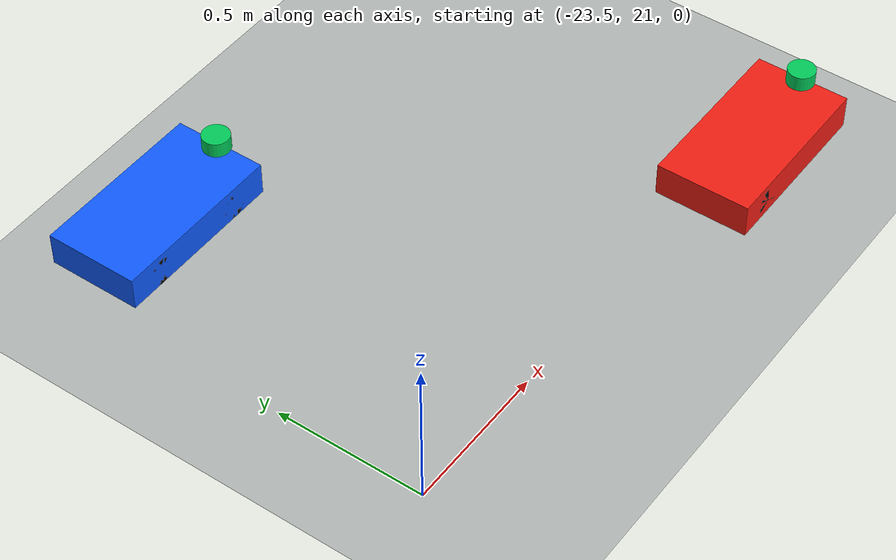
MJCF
<mujoco model="f1tenth_flat_world">
  <compiler angle="radian" coordinate="local"/>
  <option timestep="0.005" gravity="0 0 -9.81"/>
  <visual>
    <headlight ambient="0.55 0.55 0.55" diffuse="0.35 0.35 0.35" specular="0 0 0"/>
    <rgba haze="0.78 0.82 0.88 1"/>
    <global azimuth="135" elevation="-35"/>
  </visual>

  <asset>
    <texture name="melbourne_map" type="2d" file="../maps/Melbourne_map.png"/>
    <material name="melbourne_map" texture="melbourne_map" texrepeat="1 1" reflectance="0" specular="0" shininess="0"/>
    <texture name="grid" type="2d" builtin="checker" width="512" height="512" rgb1="0.62 0.64 0.64" rgb2="0.78 0.80 0.78"/>
    <material name="grid" texture="grid" texrepeat="16 16" reflectance="0" specular="0" shininess="0"/>
    <material name="body_blue" rgba="0.06 0.36 1.0 1"/>
    <material name="body_red" rgba="0.95 0.12 0.08 1"/>
    <material name="wheel_dark" rgba="0.03 0.03 0.035 1"/>
    <material name="lidar_green" rgba="0.0 0.8 0.35 1"/>
  </asset>

  <worldbody>
    <light name="sun" pos="0 0 12" dir="0 0 -1" ambient="0.45 0.45 0.45" diffuse="0.7 0.7 0.7" specular="0 0 0"/>
    <light name="fill" pos="-5 -4 5" dir="1 1 -1" ambient="0.25 0.25 0.25" diffuse="0.3 0.3 0.3" specular="0 0 0"/>
    <geom name="floor" type="plane" size="95 95 0.05" material="grid" friction="1.2 0.02 0.001" pos="8.3332 40.1062 -0.02"/>
    <geom name="melbourne_map" type="plane" size="90.09 90.09 0.01" material="melbourne_map" friction="1.2 0.02 0.001" pos="8.3332 40.1062 -0.005"/>

    <body name="ego_car" pos="-23.1983 22.1783 0.09">
      <freejoint name="ego_root"/>
      <geom name="ego_chassis" type="box" size="0.29 0.155 0.055" pos="0 0 0.055" material="body_blue" mass="3.0"/>
      <geom name="ego_lidar" type="cylinder" size="0.045 0.025" pos="0.275 0 0.135" material="lidar_green" mass="0.05"/>
      <geom name="ego_front_left_wheel" type="cylinder" size="0.045 0.025" pos="0.165 0.13 0.045" euler="1.5708 0 0" material="wheel_dark" mass="0.1"/>
      <geom name="ego_front_right_wheel" type="cylinder" size="0.045 0.025" pos="0.165 -0.13 0.045" euler="1.5708 0 0" material="wheel_dark" mass="0.1"/>
      <geom name="ego_rear_left_wheel" type="cylinder" size="0.045 0.025" pos="-0.165 0.13 0.045" euler="1.5708 0 0" material="wheel_dark" mass="0.1"/>
      <geom name="ego_rear_right_wheel" type="cylinder" size="0.045 0.025" pos="-0.165 -0.13 0.045" euler="1.5708 0 0" material="wheel_dark" mass="0.1"/>
    </body>

    <body name="opp_car" pos="-21.9370 20.9170 0.09">
      <freejoint name="opp_root"/>
      <geom name="opp_chassis" type="box" size="0.29 0.155 0.055" pos="0 0 0.055" material="body_red" mass="3.0"/>
      <geom name="opp_lidar" type="cylinder" size="0.045 0.025" pos="0.275 0 0.135" material="lidar_green" mass="0.05"/>
      <geom name="opp_front_left_wheel" type="cylinder" size="0.045 0.025" pos="0.165 0.13 0.045" euler="1.5708 0 0" material="wheel_dark" mass="0.1"/>
      <geom name="opp_front_right_wheel" type="cylinder" size="0.045 0.025" pos="0.165 -0.13 0.045" euler="1.5708 0 0" material="wheel_dark" mass="0.1"/>
      <geom name="opp_rear_left_wheel" type="cylinder" size="0.045 0.025" pos="-0.165 0.13 0.045" euler="1.5708 0 0" material="wheel_dark" mass="0.1"/>
      <geom name="opp_rear_right_wheel" type="cylinder" size="0.045 0.025" pos="-0.165 -0.13 0.045" euler="1.5708 0 0" material="wheel_dark" mass="0.1"/>
    </body>
  </worldbody>
</mujoco>
